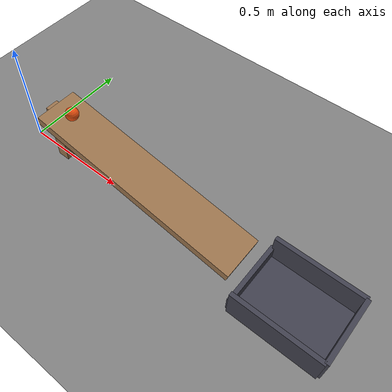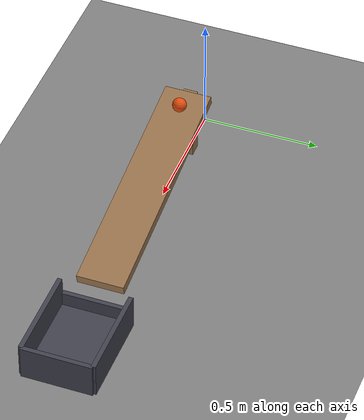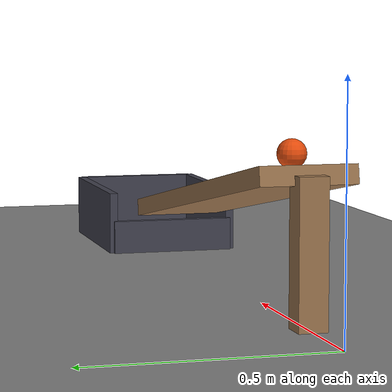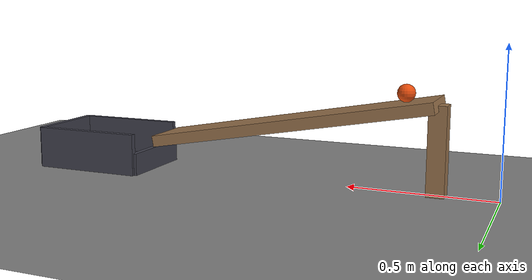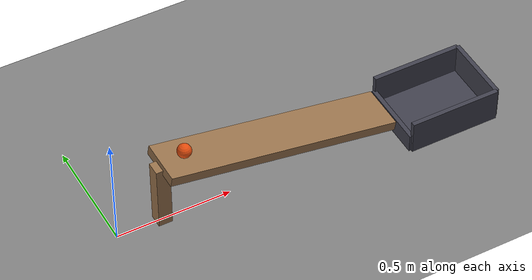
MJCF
<mujoco model="ball_rolls_down_a_ramp_into_a_cup">
  <compiler angle="radian"/>
  <option timestep="0.002"/>
  <worldbody>
    <geom name="floor" type="plane" size="6 6 0.1" friction="0.8 0.005 0.002"/>
    <body name="ramp">
      <geom name="ramp_deck" type="box" pos="0.7 0 0.21" size="0.508035 0.1 0.02" euler="0 0.178093 0" friction="0.8 0.002 0.0005" rgba="0.6 0.45 0.3 1"/>
      <geom name="ramp_leg" type="box" pos="0.2 0 0.15" size="0.03 0.03 0.15" friction="0.8 0.002 0.0005" rgba="0.6 0.45 0.3 1"/>
    </body>
    <body name="cup">
      <geom name="cup_base" type="box" pos="1.45 0 0.01" size="0.2 0.15 0.01" friction="1 0.02 0.01" solref="0.01 1" rgba="0.25 0.25 0.3 1"/>
      <geom name="cup_near_wall" type="box" pos="1.25 0 0.04" size="0.01 0.15 0.04" friction="1 0.02 0.01" solref="0.01 1" rgba="0.25 0.25 0.3 1"/>
      <geom name="cup_far_wall" type="box" pos="1.65 0 0.075" size="0.01 0.15 0.075" friction="1 0.02 0.01" solref="0.01 1" rgba="0.25 0.25 0.3 1"/>
      <geom name="cup_left_wall" type="box" pos="1.45 0.15 0.075" size="0.2 0.01 0.075" friction="1 0.02 0.01" solref="0.01 1" rgba="0.25 0.25 0.3 1"/>
      <geom name="cup_right_wall" type="box" pos="1.45 -0.15 0.075" size="0.2 0.01 0.075" friction="1 0.02 0.01" solref="0.01 1" rgba="0.25 0.25 0.3 1"/>
    </body>
    <body name="ball" pos="0.307276 0 0.331494">
      <freejoint/>
      <geom name="ball" type="sphere" pos="0 0 0" size="0.03" mass="0.1" condim="6" friction="0.8 0.002 0.0005" solref="0.01 1" rgba="0.9 0.3 0.05 1"/>
    </body>
  </worldbody>
  <keyframe>
    <key name="start" qpos="0.307276 0 0.331494 1 0 0 0" qvel="0 0 0 0 0 0"/>
  </keyframe>
</mujoco>
